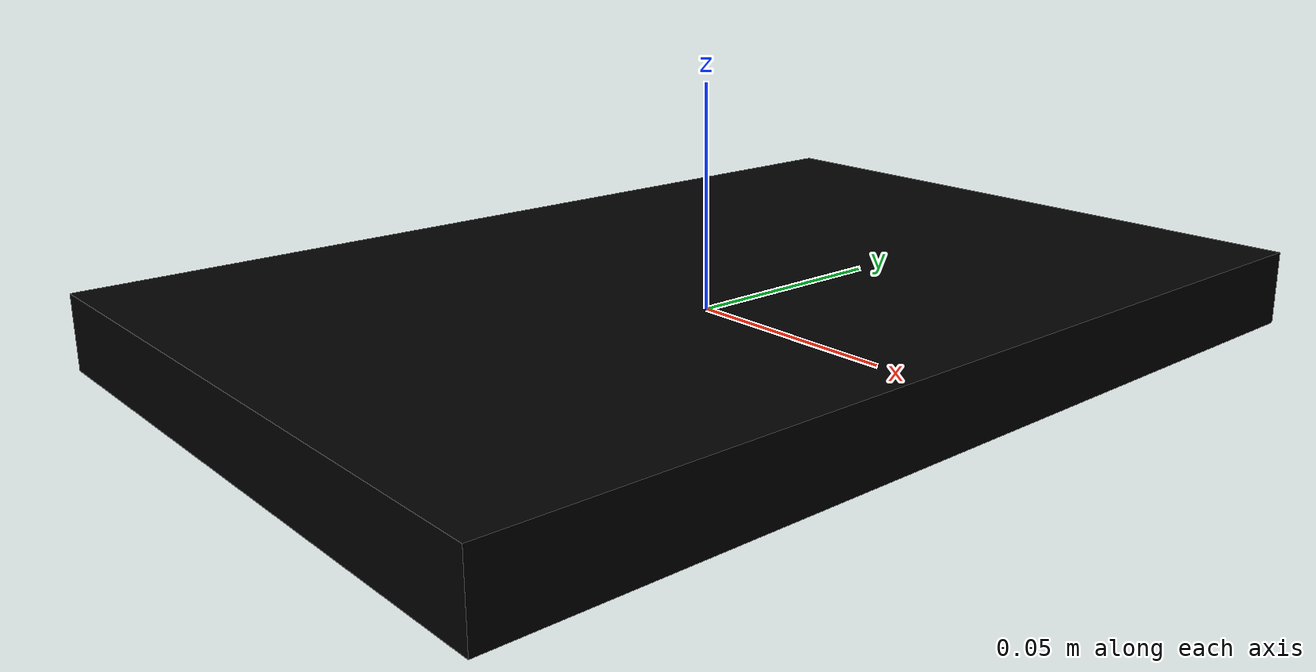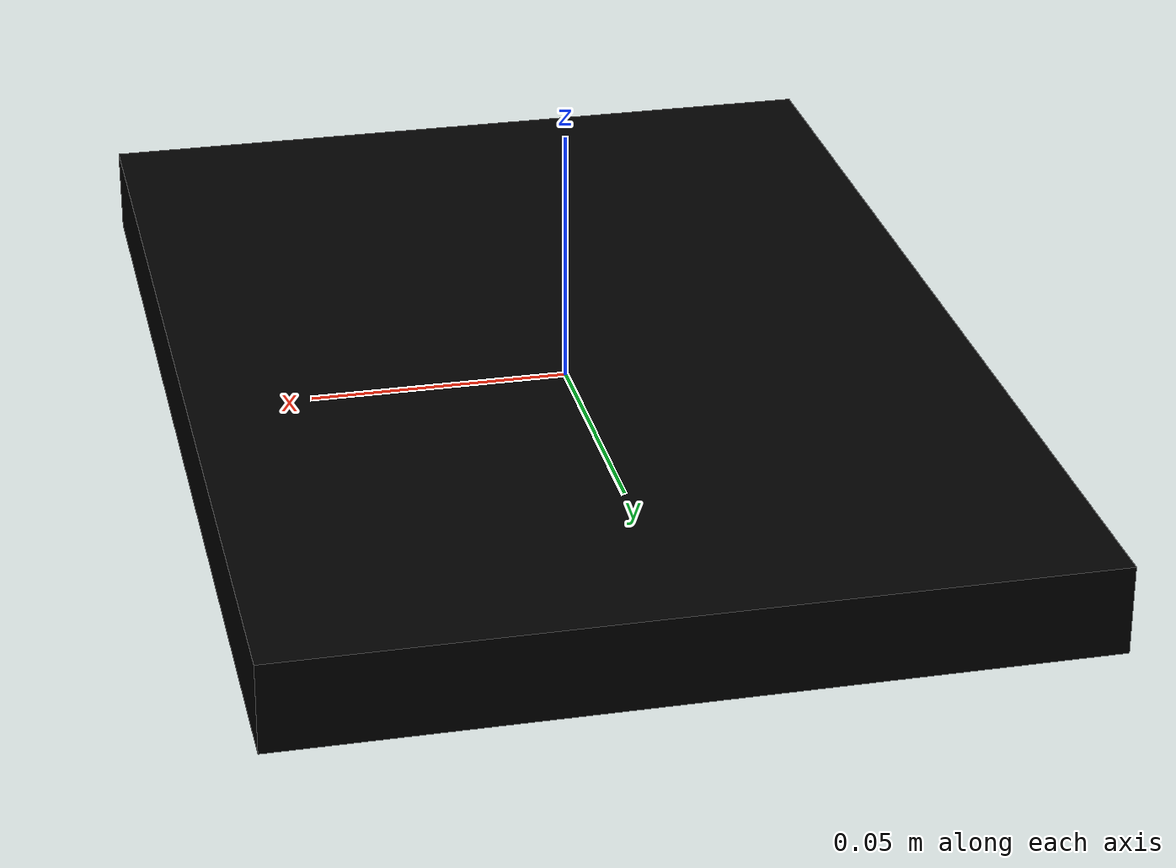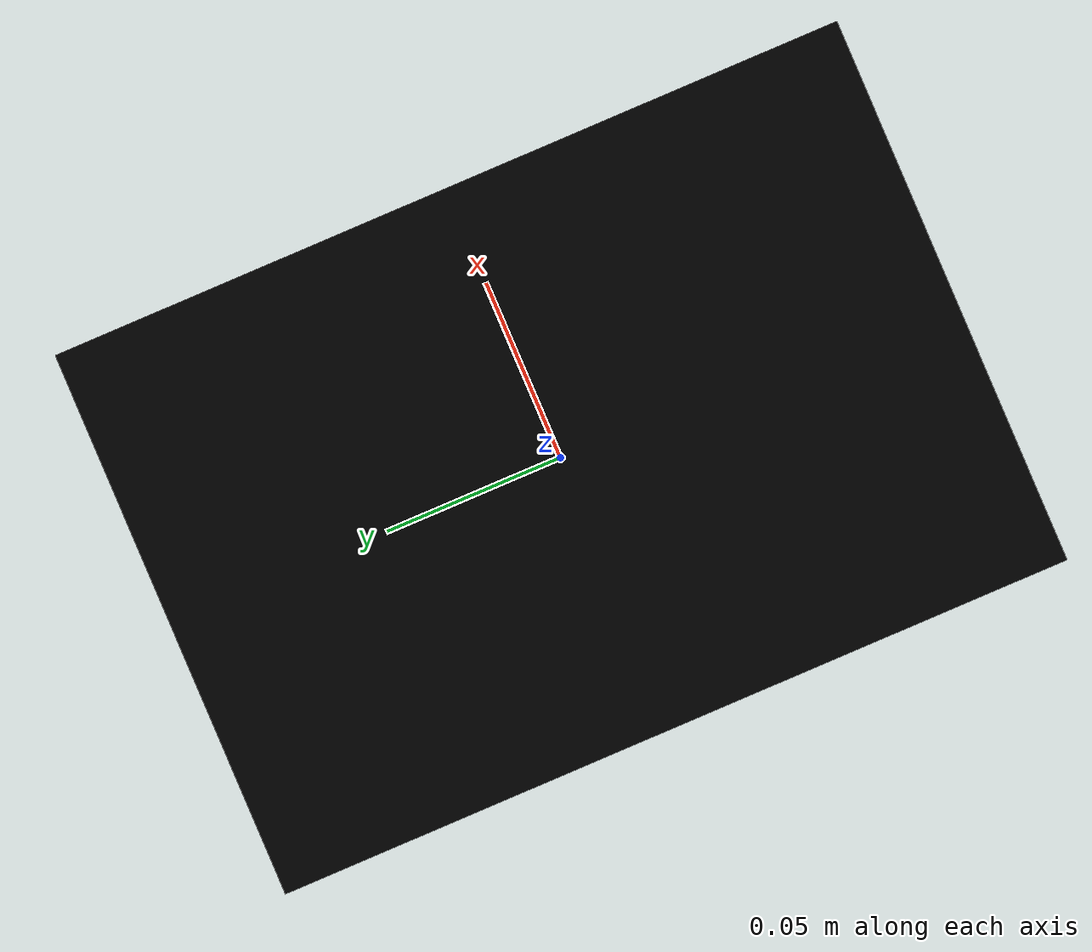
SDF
<?xml version='1.0'?>
<sdf version='1.7'>
  <model name='retry_6'>
    <link name='link'>
      <inertial>
        <mass>0.1</mass>
        <inertia>
          <ixx>0.00037145</ixx>
          <ixy>0</ixy>
          <ixz>0</ixz>
          <iyy>0.00019446</iyy>
          <iyz>0</iyz>
          <izz>0.00056106</izz>
        </inertia>
        <pose>0 0 0 0 -0 0</pose>
      </inertial>
      <gravity>1</gravity>
      <self_collide>0</self_collide>
      <enable_wind>0</enable_wind>
      <kinematic>0</kinematic>
      <pose>0 0 0 0 -0 0</pose>
      <visual name='visual'>
        <geometry>
          <box>
            <size>0.151804 0.220309 0.017052</size>
          </box>
        </geometry>
        <material>
          <shader type='pixel'>
            <normal_map>__default__</normal_map>
          </shader>
          <script>
            <name>ModelPreview_7::link::visual_MATERIAL_</name>
            <uri>__default__</uri>
          </script>
          <ambient>0 0 0 1</ambient>
          <diffuse>0 0 0 1</diffuse>
          <specular>0 0 0 1</specular>
          <emissive>0 0 0 1</emissive>
        </material>
        <pose>0 0 0 0 -0 0</pose>
        <transparency>0</transparency>
        <cast_shadows>1</cast_shadows>
      </visual>
      <collision name='collision'>
        <laser_retro>0</laser_retro>
        <max_contacts>10</max_contacts>
        <pose>0 0 0 0 -0 0</pose>
        <geometry>
          <box>
            <size>0.151804 0.220309 0.017052</size>
          </box>
        </geometry>
        <surface>
          <friction>
            <ode>
              <mu>3.5</mu>
              <mu2>3.5</mu2>
              <fdir1>0 0 0</fdir1>
              <slip1>-0</slip1>
              <slip2>-0</slip2>
            </ode>
            <torsional>
              <coefficient>1</coefficient>
              <patch_radius>0</patch_radius>
              <surface_radius>0</surface_radius>
              <use_patch_radius>1</use_patch_radius>
              <ode>
                <slip>0</slip>
              </ode>
            </torsional>
          </friction>
          <bounce>
            <restitution_coefficient>0</restitution_coefficient>
            <threshold>1e+06</threshold>
          </bounce>
          <contact>
            <collide_without_contact>0</collide_without_contact>
            <collide_without_contact_bitmask>1</collide_without_contact_bitmask>
            <collide_bitmask>1</collide_bitmask>
            <ode>
              <soft_cfm>0</soft_cfm>
              <soft_erp>0.2</soft_erp>
              <kp>1e+13</kp>
              <kd>1</kd>
              <max_vel>0.01</max_vel>
              <min_depth>0</min_depth>
            </ode>
            <bullet>
              <split_impulse>1</split_impulse>
              <split_impulse_penetration_threshold>-0.01</split_impulse_penetration_threshold>
              <soft_cfm>0</soft_cfm>
              <soft_erp>0.2</soft_erp>
              <kp>1e+13</kp>
              <kd>1</kd>
            </bullet>
          </contact>
        </surface>
      </collision>
    </link>
    <static>0</static>
    <allow_auto_disable>1</allow_auto_disable>
  </model>
</sdf>
